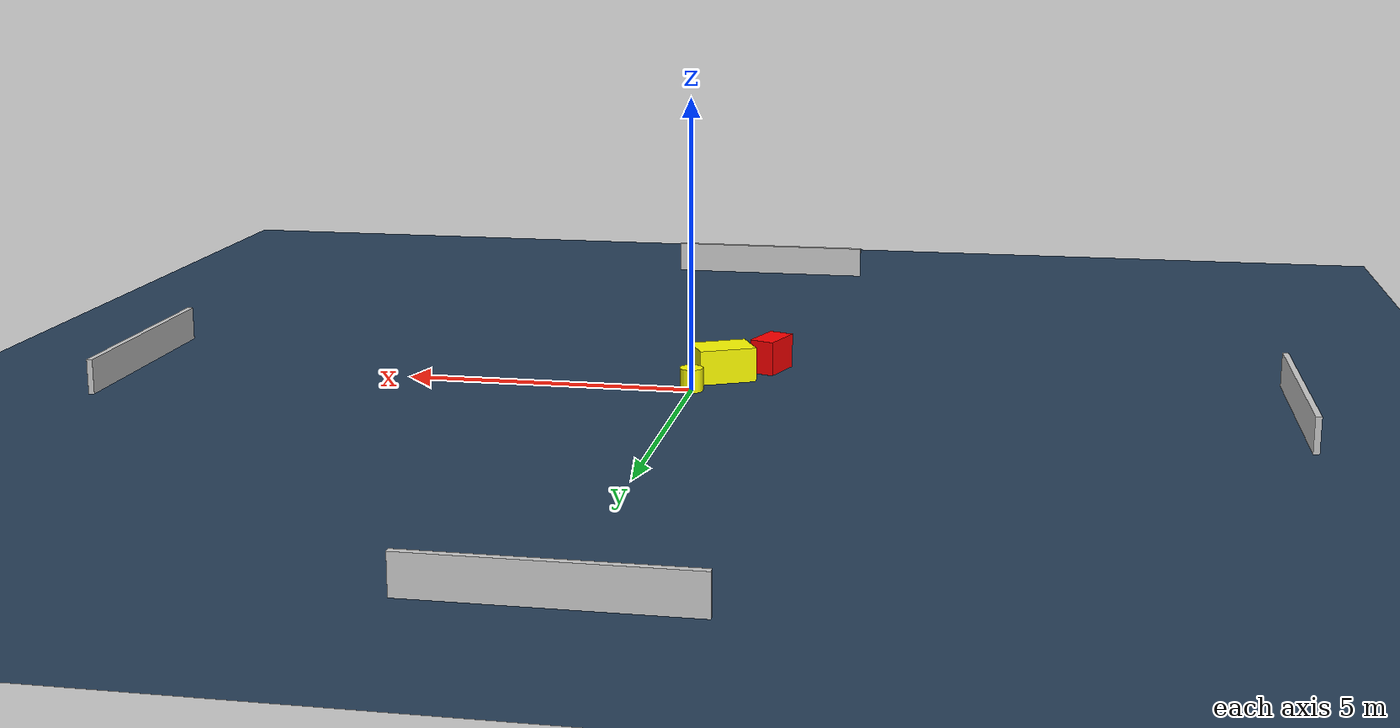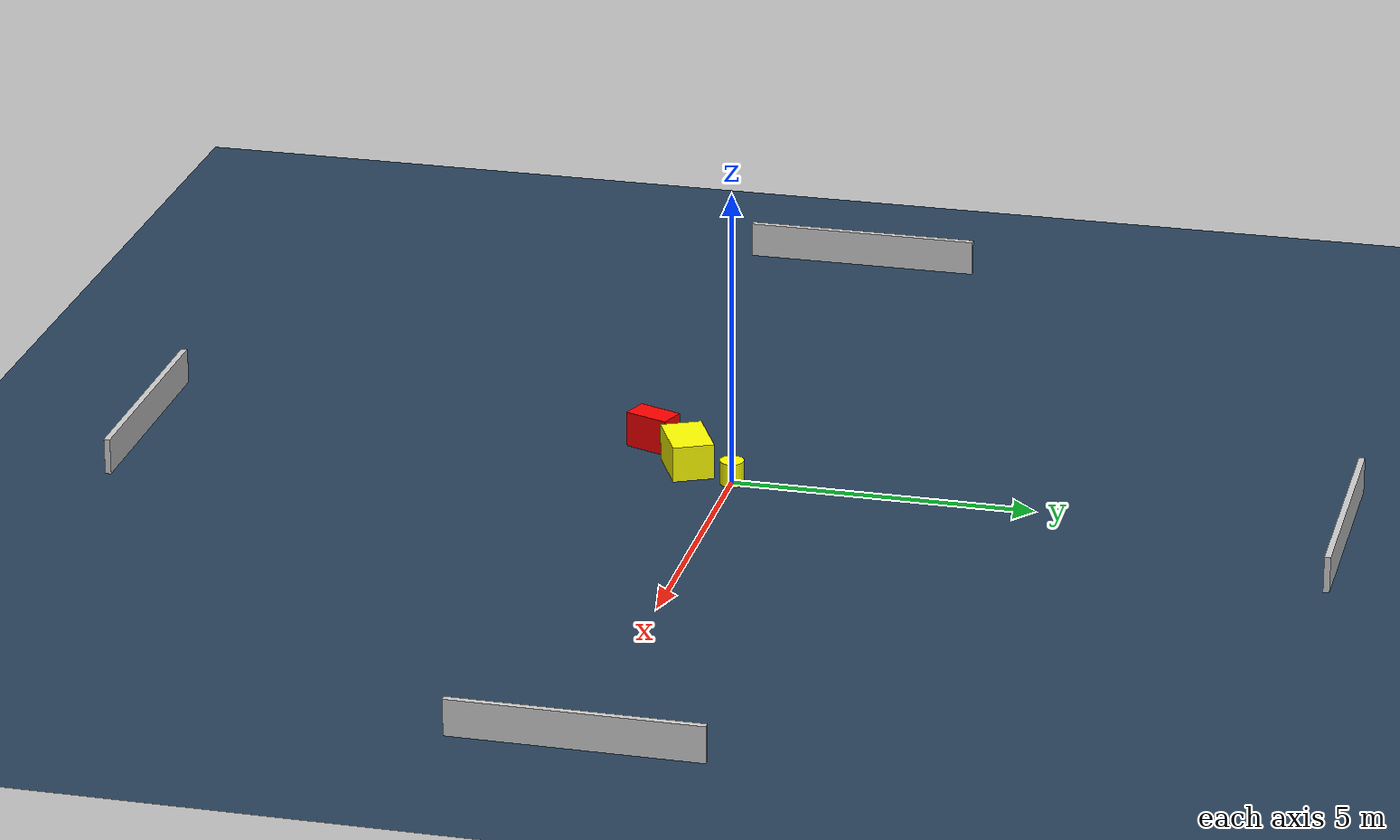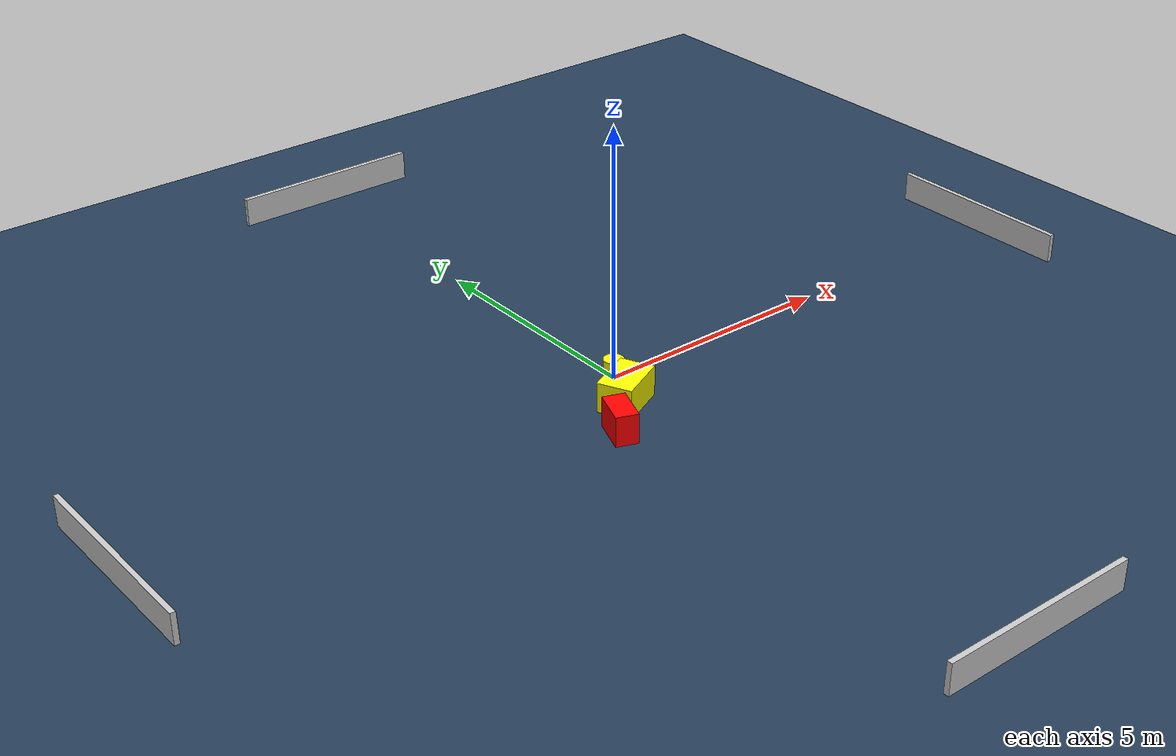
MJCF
<?xml version="1.0" ?>
<mujoco model="generated_environment">
  <option timestep="0.01" integrator="RK4" cone="elliptic"/>
  <default>
    <geom density="1"/>
  </default>
  <asset>
    <texture builtin="gradient" height="3072" name="skybox" rgb1="0.3 0.5 0.7" rgb2="0 0 0" type="skybox" width="512"/>
    <texture builtin="checker" height="300" name="groundplane" rgb1="0.2 0.3 0.4" rgb2="0.1 0.2 0.3" type="2d" width="300"/>
    <material name="groundplane" reflectance="0.2" texrepeat="5 5" texture="groundplane"/>
  </asset>
  <worldbody>
    <light dir="0 0 -1" directional="true" pos="0 0 1.5"/>
    <geom condim="3" friction="0.5 0.005 0.001" material="groundplane" name="floor" pos="0 0 0" size="0 0 0.05" type="plane"/>
    <body name="walls">
      <geom name="wall_1" condim="4" pos="-10.0 0.0 0.3" rgba="0.800000011920929 0.800000011920929 0.800000011920929 1.0" size="0.05 2.0 0.3" type="box"/>
      <geom name="wall_2" condim="4" pos="10.0 0.0 0.3" rgba="0.800000011920929 0.800000011920929 0.800000011920929 1.0" size="0.05 2.0 0.3" type="box"/>
      <geom name="wall_3" condim="4" pos="0.0 -10.0 0.3" rgba="0.800000011920929 0.800000011920929 0.800000011920929 1.0" size="2.0 0.05 0.3" type="box"/>
      <geom name="wall_4" condim="4" pos="0.0 10.0 0.3" rgba="0.800000011920929 0.800000011920929 0.800000011920929 1.0" size="2.0 0.05 0.3" type="box"/>
    </body>
    <body name="robot">
      <joint name="joint_x" type="slide" pos="0 0 0" axis="1 0 0"/>
      <joint name="joint_y" type="slide" pos="0 0 0" axis="0 1 0"/>
      <geom name="robot" type="cylinder" pos="0.0 0.0 0.2" size="0.2 0.2 0.0" mass="5.0" friction="1.0 0.005 0.0001" condim="4" rgba="1.0 1.0 0.0 1.0"/>
    </body>
    <body name="obstacle_1_movable">
      <geom name="obstacle_1_movable" condim="4" pos="-0.40636298295545237 -0.8498202252191683 0.3" euler="0 0 115.7282787993166" friction="0.0 0.005 0.001" rgba="1.0 1.0 0.0 1.0" size="0.3428478735285667 0.503139934889848 0.3" type="box" mass="0.1"/>
      <joint type="free"/>
    </body>
    <body name="obstacle_2_static">
      <geom name="obstacle_2_static" condim="4" pos="-1.1625632408969342 -1.6115620200673069 0.3" euler="0 0 69.69332258193403" friction="0.0 0.005 0.001" rgba="1.0 0.0 0.0 1.0" size="0.37895163311969216 0.21816809470518203 0.3" type="box"/>
    </body>
  </worldbody>
  <actuator>
    <motor name="actuator_x" joint="joint_x" gear="1" ctrlrange="-1 1"/>
    <motor name="actuator_y" joint="joint_y" gear="1" ctrlrange="-1 1"/>
  </actuator>
</mujoco>
